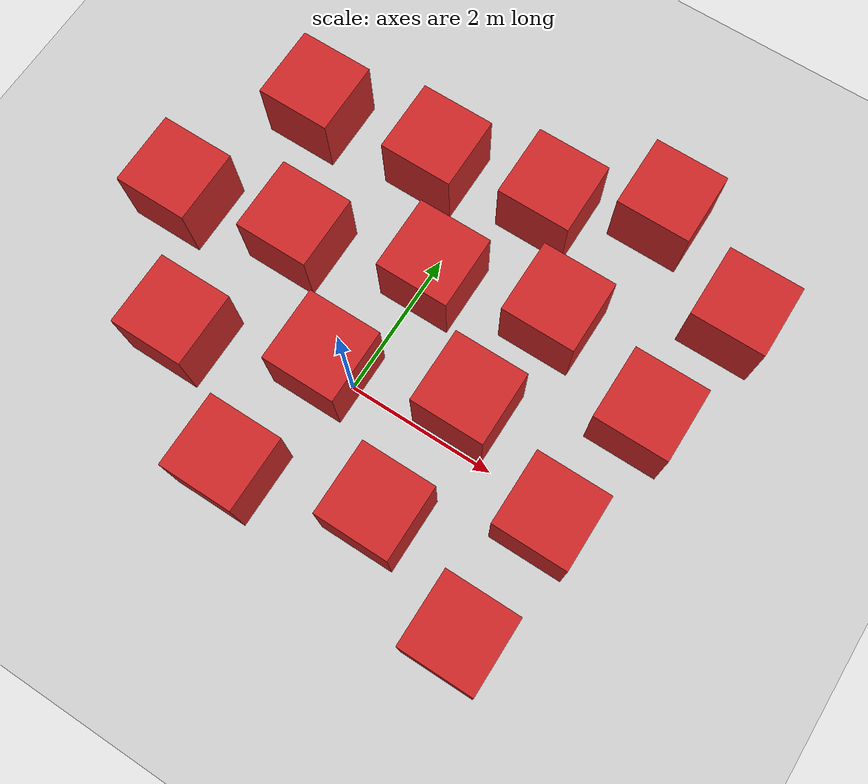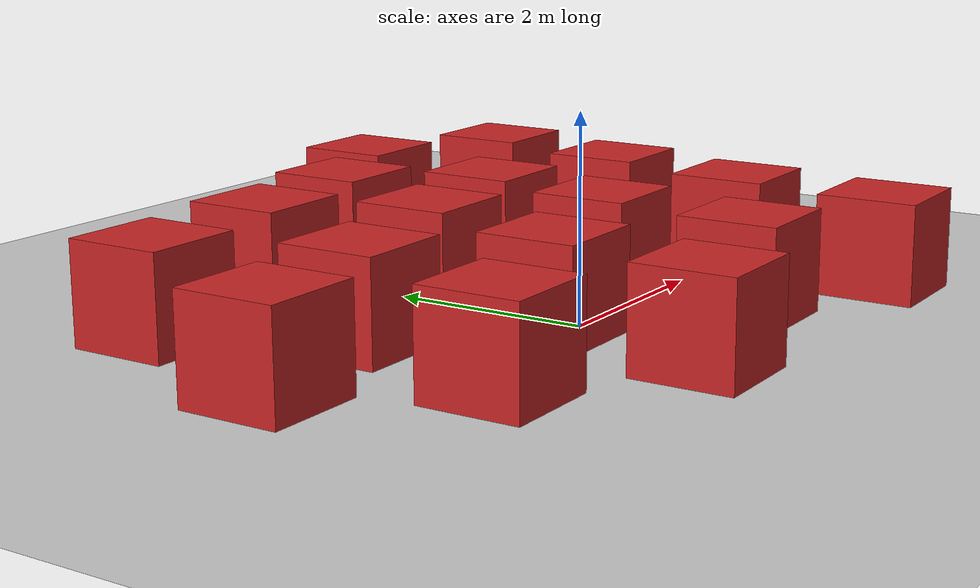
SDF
<sdf version="1.7">
 <world name="default">
  <light name="sun" type="directional">
   <pose>0 0 10 0 -0 0</pose>
   <diffuse>0.8 0.8 0.8 1</diffuse>
   <specular>0.2 0.2 0.2 1</specular>
   <attenuation>
    <range>1000</range>
    <constant>0.9</constant>
    <linear>0.01</linear>
    <quadratic>0.001</quadratic>
   </attenuation>
   <direction>-0.5 0.1 -0.9</direction>
   <spot><inner_angle>0</inner_angle><outer_angle>0</outer_angle><falloff>0</falloff></spot>
  </light>
  <model name="ground_plane">
   <static>1</static>
   <static>1</static>
   <link name="link">
    <collision name="collision">
     <geometry><plane><normal>0 0 1</normal><size>100 100</size></plane></geometry>
     <surface><friction><ode><mu>100</mu><mu2>50</mu2></ode></friction></surface>
    </collision>
    <visual name="visual">
     <cast_shadows>0</cast_shadows>
     <geometry><plane><normal>0 0 1</normal><size>100 100</size></plane></geometry>
     <material>
      <script><uri>file://media/materials/scripts/gazebo.material</uri><name>Gazebo/Grey</name></script>
     </material>
    </visual>
   </link>
  </model>
  <gravity>0 0 -9.8</gravity>
  <magnetic_field>6e-06 2.3e-05 -4.2e-05</magnetic_field>
  <atmosphere type="adiabatic"/>
  <physics type="ode">
   <max_step_size>0.001</max_step_size>
   <real_time_factor>1</real_time_factor>
   <real_time_update_rate>1000</real_time_update_rate>
  </physics>
  <scene><ambient>0.4 0.4 0.4 1</ambient><background>0.7 0.7 0.7 1</background><shadows>1</shadows></scene>
  <audio><device>default</device></audio>
  <spherical_coordinates>
   <surface_model>EARTH_WGS84</surface_model>
   <latitude_deg>0</latitude_deg>
   <longitude_deg>0</longitude_deg>
   <elevation>0</elevation>
   <heading_deg>0</heading_deg>
  </spherical_coordinates>
  <model name="unit_box">
   <static>1</static>
   <pose>-0.388588 0.041083 0.5 0 -0 0</pose>
   <link name="link">
    <inertial>
     <mass>1</mass>
     <inertia>
      <ixx>0.166667</ixx>
      <ixy>0</ixy>
      <ixz>0</ixz>
      <iyy>0.166667</iyy>
      <iyz>0</iyz>
      <izz>0.166667</izz>
     </inertia>
    </inertial>
    <collision name="collision"><geometry><box><size>1 1 1</size></box></geometry></collision>
    <visual name="visual">
     <geometry><box><size>1 1 1</size></box></geometry>
     <material>
      <script><name>Gazebo/Red</name><uri>file://media/materials/scripts/gazebo.material</uri></script>
     </material>
    </visual>
   </link>
  </model>
  <model name="unit_box_0">
   <static>1</static>
   <pose>-2.1521 -0.548694 0.5 0 -0 0</pose>
   <link name="link">
    <inertial>
     <mass>1</mass>
     <inertia>
      <ixx>0.166667</ixx>
      <ixy>0</ixy>
      <ixz>0</ixz>
      <iyy>0.166667</iyy>
      <iyz>0</iyz>
      <izz>0.166667</izz>
     </inertia>
    </inertial>
    <collision name="collision"><geometry><box><size>1 1 1</size></box></geometry></collision>
    <visual name="visual">
     <geometry><box><size>1 1 1</size></box></geometry>
     <material>
      <script><name>Gazebo/Red</name><uri>file://media/materials/scripts/gazebo.material</uri></script>
     </material>
    </visual>
   </link>
  </model>
  <model name="unit_box_1">
   <static>1</static>
   <pose>1.15873 -1.14084 0.5 0 -0 0</pose>
   <link name="link">
    <inertial>
     <mass>1</mass>
     <inertia>
      <ixx>0.166667</ixx>
      <ixy>0</ixy>
      <ixz>0</ixz>
      <iyy>0.166667</iyy>
      <iyz>0</iyz>
      <izz>0.166667</izz>
     </inertia>
    </inertial>
    <collision name="collision"><geometry><box><size>1 1 1</size></box></geometry></collision>
    <visual name="visual">
     <geometry><box><size>1 1 1</size></box></geometry>
     <material>
      <script><name>Gazebo/Red</name><uri>file://media/materials/scripts/gazebo.material</uri></script>
     </material>
    </visual>
   </link>
  </model>
  <model name="unit_box_2">
   <static>1</static>
   <pose>1.3486 0.545784 0.5 0 -0 0</pose>
   <link name="link">
    <inertial>
     <mass>1</mass>
     <inertia>
      <ixx>0.166667</ixx>
      <ixy>0</ixy>
      <ixz>0</ixz>
      <iyy>0.166667</iyy>
      <iyz>0</iyz>
      <izz>0.166667</izz>
     </inertia>
    </inertial>
    <collision name="collision"><geometry><box><size>1 1 1</size></box></geometry></collision>
    <visual name="visual">
     <geometry><box><size>1 1 1</size></box></geometry>
     <material>
      <script><name>Gazebo/Red</name><uri>file://media/materials/scripts/gazebo.material</uri></script>
     </material>
    </visual>
   </link>
  </model>
  <model name="unit_box_3">
   <static>1</static>
   <pose>-0.634148 -1.62635 0.5 0 -0 0</pose>
   <link name="link">
    <inertial>
     <mass>1</mass>
     <inertia>
      <ixx>0.166667</ixx>
      <ixy>0</ixy>
      <ixz>0</ixz>
      <iyy>0.166667</iyy>
      <iyz>0</iyz>
      <izz>0.166667</izz>
     </inertia>
    </inertial>
    <collision name="collision"><geometry><box><size>1 1 1</size></box></geometry></collision>
    <visual name="visual">
     <geometry><box><size>1 1 1</size></box></geometry>
     <material>
      <script><name>Gazebo/Red</name><uri>file://media/materials/scripts/gazebo.material</uri></script>
     </material>
    </visual>
   </link>
  </model>
  <model name="unit_box_3_clone_1">
   <static>1</static>
   <pose>2.89929 -0.163205 0.5 0 -0 0</pose>
   <link name="link">
    <inertial>
     <mass>1</mass>
     <inertia>
      <ixx>0.166667</ixx>
      <ixy>0</ixy>
      <ixz>0</ixz>
      <iyy>0.166667</iyy>
      <iyz>0</iyz>
      <izz>0.166667</izz>
     </inertia>
    </inertial>
    <collision name="collision"><geometry><box><size>1 1 1</size></box></geometry></collision>
    <visual name="visual">
     <geometry><box><size>1 1 1</size></box></geometry>
     <material>
      <script><name>Gazebo/Red</name><uri>file://media/materials/scripts/gazebo.material</uri></script>
     </material>
    </visual>
   </link>
  </model>
  <model name="unit_box_3_clone_2">
   <static>1</static>
   <pose>1.65196 2.06306 0.5 0 -0 0</pose>
   <link name="link">
    <inertial>
     <mass>1</mass>
     <inertia>
      <ixx>0.166667</ixx>
      <ixy>0</ixy>
      <ixz>0</ixz>
      <iyy>0.166667</iyy>
      <iyz>0</iyz>
      <izz>0.166667</izz>
     </inertia>
    </inertial>
    <collision name="collision"><geometry><box><size>1 1 1</size></box></geometry></collision>
    <visual name="visual">
     <geometry><box><size>1 1 1</size></box></geometry>
     <material>
      <script><name>Gazebo/Red</name><uri>file://media/materials/scripts/gazebo.material</uri></script>
     </material>
    </visual>
   </link>
  </model>
  <model name="unit_box_3_clone_3">
   <static>1</static>
   <pose>-1.63414 1.25758 0.5 0 -0 0</pose>
   <link name="link">
    <inertial>
     <mass>1</mass>
     <inertia>
      <ixx>0.166667</ixx>
      <ixy>0</ixy>
      <ixz>0</ixz>
      <iyy>0.166667</iyy>
      <iyz>0</iyz>
      <izz>0.166667</izz>
     </inertia>
    </inertial>
    <collision name="collision"><geometry><box><size>1 1 1</size></box></geometry></collision>
    <visual name="visual">
     <geometry><box><size>1 1 1</size></box></geometry>
     <material>
      <script><name>Gazebo/Red</name><uri>file://media/materials/scripts/gazebo.material</uri></script>
     </material>
    </visual>
   </link>
  </model>
  <model name="unit_box_3_clone_4">
   <static>1</static>
   <pose>0.085025 1.73696 0.5 0 -0 0</pose>
   <link name="link">
    <inertial>
     <mass>1</mass>
     <inertia>
      <ixx>0.166667</ixx>
      <ixy>0</ixy>
      <ixz>0</ixz>
      <iyy>0.166667</iyy>
      <iyz>0</iyz>
      <izz>0.166667</izz>
     </inertia>
    </inertial>
    <collision name="collision"><geometry><box><size>1 1 1</size></box></geometry></collision>
    <visual name="visual">
     <geometry><box><size>1 1 1</size></box></geometry>
     <material>
      <script><name>Gazebo/Red</name><uri>file://media/materials/scripts/gazebo.material</uri></script>
     </material>
    </visual>
   </link>
  </model>
  <model name="unit_box_3_clone_5">
   <static>1</static>
   <pose>3.23382 1.51204 0.5 0 -0 0</pose>
   <link name="link">
    <inertial>
     <mass>1</mass>
     <inertia>
      <ixx>0.166667</ixx>
      <ixy>0</ixy>
      <ixz>0</ixz>
      <iyy>0.166667</iyy>
      <iyz>0</iyz>
      <izz>0.166667</izz>
     </inertia>
    </inertial>
    <collision name="collision"><geometry><box><size>1 1 1</size></box></geometry></collision>
    <visual name="visual">
     <geometry><box><size>1 1 1</size></box></geometry>
     <material>
      <script><name>Gazebo/Red</name><uri>file://media/materials/scripts/gazebo.material</uri></script>
     </material>
    </visual>
   </link>
  </model>
  <model name="unit_box_3_clone_6">
   <static>1</static>
   <pose>3.57143 3.21842 0.5 0 -0 0</pose>
   <link name="link">
    <inertial>
     <mass>1</mass>
     <inertia>
      <ixx>0.166667</ixx>
      <ixy>0</ixy>
      <ixz>0</ixz>
      <iyy>0.166667</iyy>
      <iyz>0</iyz>
      <izz>0.166667</izz>
     </inertia>
    </inertial>
    <collision name="collision"><geometry><box><size>1 1 1</size></box></geometry></collision>
    <visual name="visual">
     <geometry><box><size>1 1 1</size></box></geometry>
     <material>
      <script><name>Gazebo/Red</name><uri>file://media/materials/scripts/gazebo.material</uri></script>
     </material>
    </visual>
   </link>
  </model>
  <model name="unit_box_3_clone_7">
   <static>1</static>
   <pose>2.73727 -1.84713 0.5 0 -0 0</pose>
   <link name="link">
    <inertial>
     <mass>1</mass>
     <inertia>
      <ixx>0.166667</ixx>
      <ixy>0</ixy>
      <ixz>0</ixz>
      <iyy>0.166667</iyy>
      <iyz>0</iyz>
      <izz>0.166667</izz>
     </inertia>
    </inertial>
    <collision name="collision"><geometry><box><size>1 1 1</size></box></geometry></collision>
    <visual name="visual">
     <geometry><box><size>1 1 1</size></box></geometry>
     <material>
      <script><name>Gazebo/Red</name><uri>file://media/materials/scripts/gazebo.material</uri></script>
     </material>
    </visual>
   </link>
  </model>
  <model name="unit_box_3_clone_9">
   <static>1</static>
   <pose>-3.23381 0.962975 0.5 0 -0 0</pose>
   <link name="link">
    <inertial>
     <mass>1</mass>
     <inertia>
      <ixx>0.166667</ixx>
      <ixy>0</ixy>
      <ixz>0</ixz>
      <iyy>0.166667</iyy>
      <iyz>0</iyz>
      <izz>0.166667</izz>
     </inertia>
    </inertial>
    <collision name="collision"><geometry><box><size>1 1 1</size></box></geometry></collision>
    <visual name="visual">
     <geometry><box><size>1 1 1</size></box></geometry>
     <material>
      <script><name>Gazebo/Red</name><uri>file://media/materials/scripts/gazebo.material</uri></script>
     </material>
    </visual>
   </link>
  </model>
  <model name="unit_box_3_clone_10">
   <static>1</static>
   <pose>-2.46402 2.90691 0.5 0 -0 0</pose>
   <link name="link">
    <inertial>
     <mass>1</mass>
     <inertia>
      <ixx>0.166667</ixx>
      <ixy>0</ixy>
      <ixz>0</ixz>
      <iyy>0.166667</iyy>
      <iyz>0</iyz>
      <izz>0.166667</izz>
     </inertia>
    </inertial>
    <collision name="collision"><geometry><box><size>1 1 1</size></box></geometry></collision>
    <visual name="visual">
     <geometry><box><size>1 1 1</size></box></geometry>
     <material>
      <script><name>Gazebo/Red</name><uri>file://media/materials/scripts/gazebo.material</uri></script>
     </material>
    </visual>
   </link>
  </model>
  <model name="unit_box_3_clone_11">
   <static>1</static>
   <pose>-0.741617 3.09241 0.5 0 -0 0</pose>
   <link name="link">
    <inertial>
     <mass>1</mass>
     <inertia>
      <ixx>0.166667</ixx>
      <ixy>0</ixy>
      <ixz>0</ixz>
      <iyy>0.166667</iyy>
      <iyz>0</iyz>
      <izz>0.166667</izz>
     </inertia>
    </inertial>
    <collision name="collision"><geometry><box><size>1 1 1</size></box></geometry></collision>
    <visual name="visual">
     <geometry><box><size>1 1 1</size></box></geometry>
     <material>
      <script><name>Gazebo/Red</name><uri>file://media/materials/scripts/gazebo.material</uri></script>
     </material>
    </visual>
   </link>
  </model>
  <model name="unit_box_3_clone_12">
   <static>1</static>
   <pose>0.808817 3.34845 0.5 0 -0 0</pose>
   <link name="link">
    <inertial>
     <mass>1</mass>
     <inertia>
      <ixx>0.166667</ixx>
      <ixy>0</ixy>
      <ixz>0</ixz>
      <iyy>0.166667</iyy>
      <iyz>0</iyz>
      <izz>0.166667</izz>
     </inertia>
    </inertial>
    <collision name="collision"><geometry><box><size>1 1 1</size></box></geometry></collision>
    <visual name="visual">
     <geometry><box><size>1 1 1</size></box></geometry>
     <material>
      <script><name>Gazebo/Red</name><uri>file://media/materials/scripts/gazebo.material</uri></script>
     </material>
    </visual>
   </link>
  </model>
  <model name="unit_box_3_clone_13">
   <static>1</static>
   <pose>2.11302 4.01082 0.5 0 -0 0</pose>
   <link name="link">
    <inertial>
     <mass>1</mass>
     <inertia>
      <ixx>0.166667</ixx>
      <ixy>0</ixy>
      <ixz>0</ixz>
      <iyy>0.166667</iyy>
      <iyz>0</iyz>
      <izz>0.166667</izz>
     </inertia>
    </inertial>
    <collision name="collision"><geometry><box><size>1 1 1</size></box></geometry></collision>
    <visual name="visual">
     <geometry><box><size>1 1 1</size></box></geometry>
     <material>
      <script><name>Gazebo/Red</name><uri>file://media/materials/scripts/gazebo.material</uri></script>
     </material>
    </visual>
   </link>
  </model>
 </world>
</sdf>
